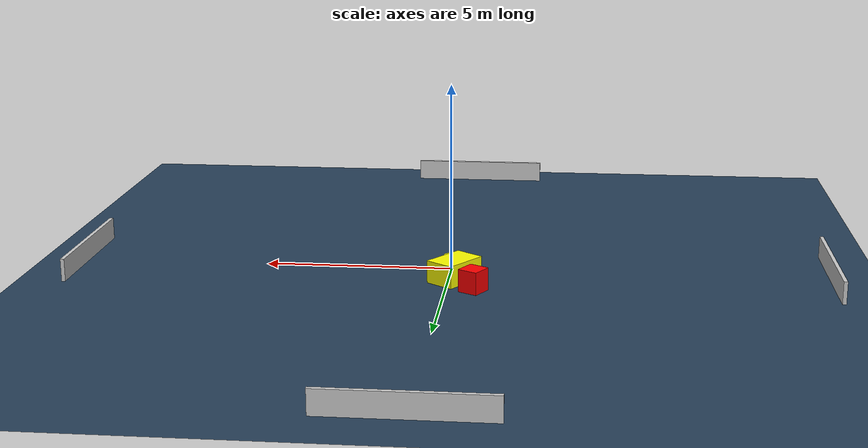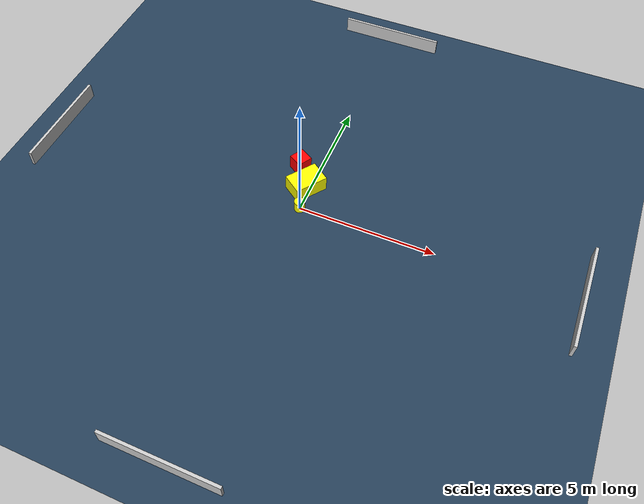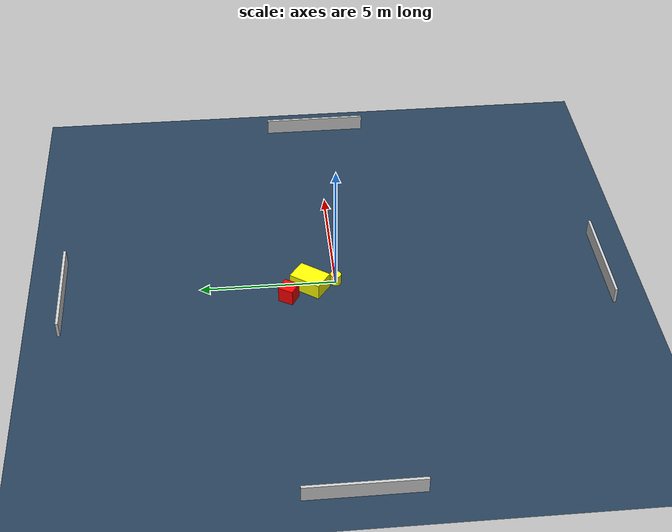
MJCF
<?xml version="1.0" ?>
<mujoco model="generated_environment">
  <option timestep="0.01" integrator="RK4" cone="elliptic"/>
  <default>
    <geom density="1"/>
  </default>
  <asset>
    <texture builtin="gradient" height="3072" name="skybox" rgb1="0.3 0.5 0.7" rgb2="0 0 0" type="skybox" width="512"/>
    <texture builtin="checker" height="300" name="groundplane" rgb1="0.2 0.3 0.4" rgb2="0.1 0.2 0.3" type="2d" width="300"/>
    <material name="groundplane" reflectance="0.2" texrepeat="5 5" texture="groundplane"/>
  </asset>
  <worldbody>
    <light dir="0 0 -1" directional="true" pos="0 0 1.5"/>
    <geom condim="3" friction="0.5 0.005 0.001" material="groundplane" name="floor" pos="0 0 0" size="0 0 0.05" type="plane"/>
    <body name="walls">
      <geom name="wall_1" condim="4" pos="-10.0 0.0 0.3" rgba="0.800000011920929 0.800000011920929 0.800000011920929 1.0" size="0.05 2.0 0.3" type="box"/>
      <geom name="wall_2" condim="4" pos="10.0 0.0 0.3" rgba="0.800000011920929 0.800000011920929 0.800000011920929 1.0" size="0.05 2.0 0.3" type="box"/>
      <geom name="wall_3" condim="4" pos="0.0 -10.0 0.3" rgba="0.800000011920929 0.800000011920929 0.800000011920929 1.0" size="2.0 0.05 0.3" type="box"/>
      <geom name="wall_4" condim="4" pos="0.0 10.0 0.3" rgba="0.800000011920929 0.800000011920929 0.800000011920929 1.0" size="2.0 0.05 0.3" type="box"/>
    </body>
    <body name="robot">
      <joint name="joint_x" type="slide" pos="0 0 0" axis="1 0 0"/>
      <joint name="joint_y" type="slide" pos="0 0 0" axis="0 1 0"/>
      <geom name="robot" type="cylinder" pos="0.0 0.0 0.2" size="0.2 0.2 0.0" mass="5.0" friction="1.0 0.005 0.0001" condim="4" rgba="1.0 1.0 0.0 1.0"/>
    </body>
    <body name="obstacle_1_movable">
      <geom name="obstacle_1_movable" condim="4" pos="-0.16615361107867913 0.9651714980663312 0.3" euler="0 0 234.05281530246714" friction="0.0 0.005 0.001" rgba="1.0 1.0 0.0 1.0" size="0.6141082344934296 0.40915910173175785 0.3" type="box" mass="0.1"/>
      <joint type="free"/>
    </body>
    <body name="obstacle_2_static">
      <geom name="obstacle_2_static" condim="4" pos="-0.721939182271939 1.7792665456373036 0.3" euler="0 0 240.02455723951195" friction="0.0 0.005 0.001" rgba="1.0 0.0 0.0 1.0" size="0.28226481843900675 0.2748174329538514 0.3" type="box"/>
    </body>
  </worldbody>
  <actuator>
    <motor name="actuator_x" joint="joint_x" gear="1" ctrlrange="-1 1"/>
    <motor name="actuator_y" joint="joint_y" gear="1" ctrlrange="-1 1"/>
  </actuator>
</mujoco>
